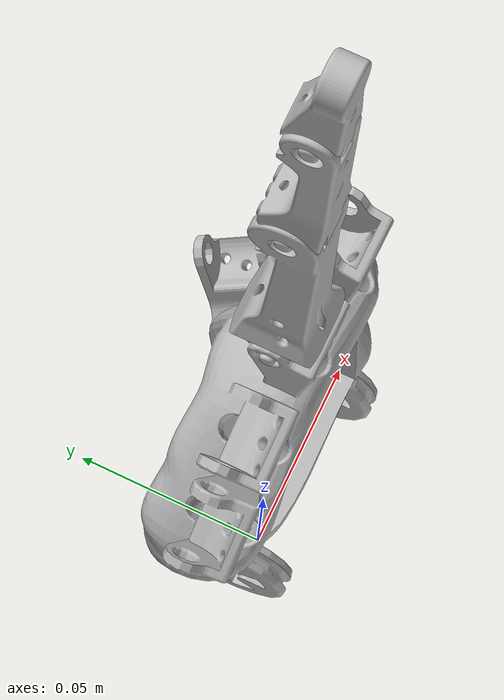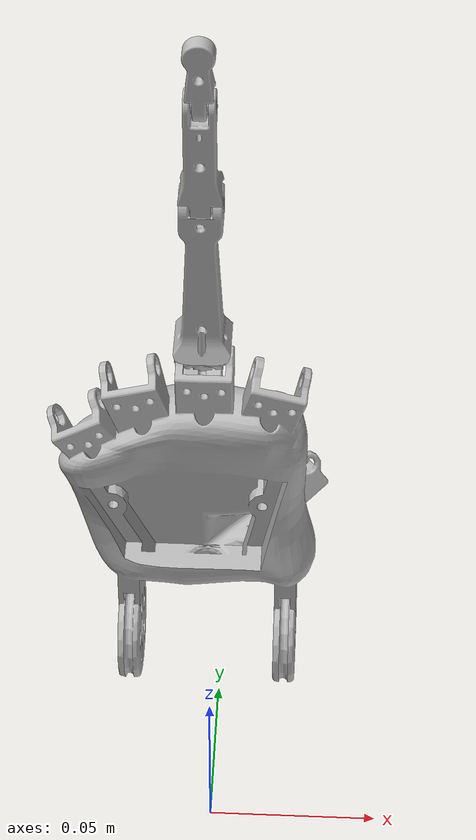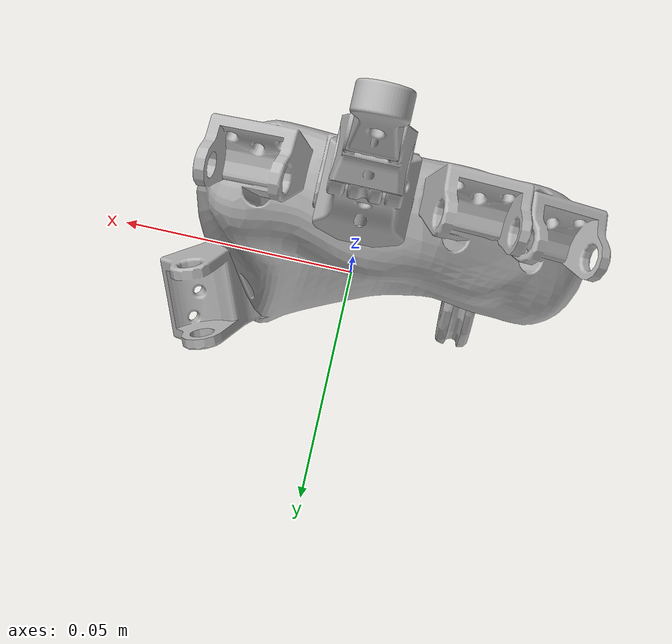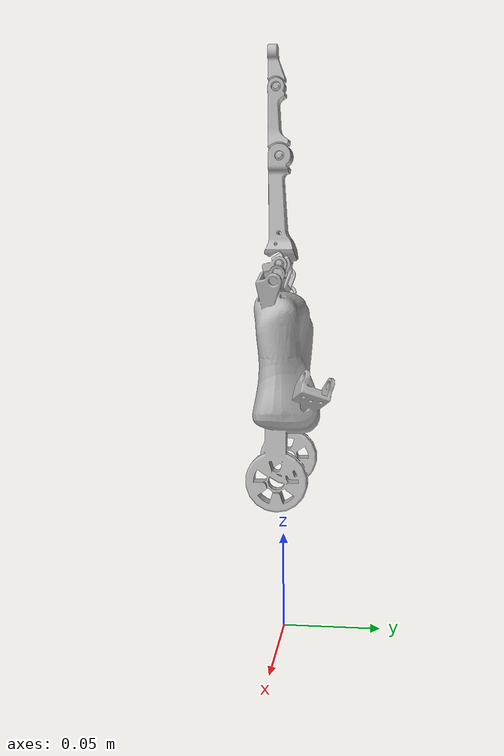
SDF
<?xml version="1.0" ?>
<sdf version="1.6">
	<model name="onefinger">
		<link name="palm">
			<self_collide>false</self_collide>
			<pose frame="">-6.664340119189506e-05 6.162819843918025e-05 0.0056437840567346974 0.0 -0.0 0.0</pose>
			<inertial>
				<pose frame="">0.0 0.0 0.0 0 0 0</pose>
				<mass>15.519964907903075</mass>
				<inertia>
					<ixx>0.24262125582427416</ixx>
					<ixy>-1.7978814907597018e-07</ixy>
					<ixz>-1.758643879682634e-05</ixz>
					<iyy>0.2426383188330765</iyy>
					<iyz>1.7623163635523375e-05</iyz>
					<izz>0.4816929735544059</izz>
				</inertia>
			</inertial>
			<collision name="palm_collision">
				<geometry>
					<mesh>
						<uri>model://onefinger/meshes/CAD/palm.stl</uri>
						<scale>0.001 0.001 0.001</scale>
					</mesh>
				</geometry>
			</collision>
			<visual name="palm_visual">
				<geometry>
					<mesh>
						<uri>model://onefinger/meshes/CAD/palm.stl</uri>
						<scale>0.001 0.001 0.001</scale>
					</mesh>
				</geometry>
			</visual>
		</link>
		<link name="middle_limb0">
			<self_collide>false</self_collide>
			<pose frame="">-0.0005614072382198571 0.0001911940467719096 0.18754908808523774 0.0 -0.0 0.0</pose>
			<inertial>
				<pose frame="">0.0 0.0 0.0 0 0 0</pose>
				<mass>0.0004269894659846259</mass>
				<inertia>
					<ixx>1.5024418590495028e-05</ixx>
					<ixy>4.467576260292382e-11</ixy>
					<ixz>-1.4967576697614157e-08</ixz>
					<iyy>1.5027288983317431e-05</iyy>
					<iyz>4.4958256796038474e-08</iyz>
					<izz>7.584567912129686e-09</izz>
				</inertia>
			</inertial>
			<collision name="middle_limb0_collision">
				<geometry>
					<mesh>
						<uri>model://onefinger/meshes/CAD/middle_limb0.stl</uri>
						<scale>0.001 0.001 0.001</scale>
					</mesh>
				</geometry>
			</collision>
			<visual name="middle_limb0_visual">
				<geometry>
					<mesh>
						<uri>model://onefinger/meshes/CAD/middle_limb0.stl</uri>
						<scale>0.001 0.001 0.001</scale>
					</mesh>
				</geometry>
			</visual>
		</link>
		<link name="middle_limb1">
			<self_collide>false</self_collide>
			<pose frame="">-0.0005622466361193446 -0.0007034251535573103 0.21222052674075353 0.0 -0.0 0.0</pose>
			<inertial>
				<pose frame="">0.0 0.0 0.0 0 0 0</pose>
				<mass>0.003829477216665521</mass>
				<inertia>
					<ixx>0.0001734470724372432</ixx>
					<ixy>-1.5140545386005193e-09</ixy>
					<ixz>6.054526341483969e-07</ixz>
					<iyy>0.00017344679488345691</iyy>
					<iyz>4.5693231951306453e-07</iyz>
					<izz>7.755117774694315e-08</izz>
				</inertia>
			</inertial>
			<collision name="middle_limb1_collision">
				<geometry>
					<mesh>
						<uri>model://onefinger/meshes/CAD/middle_limb1.stl</uri>
						<scale>0.001 0.001 0.001</scale>
					</mesh>
				</geometry>
			</collision>
			<visual name="middle_limb1_visual">
				<geometry>
					<mesh>
						<uri>model://onefinger/meshes/CAD/middle_limb1.stl</uri>
						<scale>0.001 0.001 0.001</scale>
					</mesh>
				</geometry>
			</visual>
		</link>
		<link name="middle_limb2">
			<self_collide>false</self_collide>
			<pose frame="">-0.0005620708223228621 -0.0014746610724396692 0.2519666528877768 0.0 -0.0 0.0</pose>
			<inertial>
				<pose frame="">0.0 0.0 0.0 0 0 0</pose>
				<mass>0.00162479160090613</mass>
				<inertia>
					<ixx>0.00010333221313319288</ixx>
					<ixy>-1.3470348047916095e-09</ixy>
					<ixz>6.164227970563374e-07</ixz>
					<iyy>0.00010332834567878387</iyy>
					<iyz>2.3011160178749415e-07</iyz>
					<izz>2.395750385176394e-08</izz>
				</inertia>
			</inertial>
			<collision name="middle_limb2_collision">
				<geometry>
					<mesh>
						<uri>model://onefinger/meshes/CAD/middle_limb2.stl</uri>
						<scale>0.001 0.001 0.001</scale>
					</mesh>
				</geometry>
			</collision>
			<visual name="middle_limb2_visual">
				<geometry>
					<mesh>
						<uri>model://onefinger/meshes/CAD/middle_limb2.stl</uri>
						<scale>0.001 0.001 0.001</scale>
					</mesh>
				</geometry>
			</visual>
		</link>
		<link name="middle_limb3">
			<self_collide>false</self_collide>
			<pose frame="">-0.0005621880690376905 -0.0022096259752100132 0.2790957138228765 0.0 -0.0 0.0</pose>
			<inertial>
				<pose frame="">0.0 0.0 0.0 0 0 0</pose>
				<mass>0.0006943749017269073</mass>
				<inertia>
					<ixx>5.4121019021675476e-05</ixx>
					<ixy>-8.626164948284511e-10</ixy>
					<ixz>4.310030631920739e-07</ixz>
					<iyy>5.411747094805615e-05</iyy>
					<iyz>1.0895061373856633e-07</iyz>
					<izz>8.446893842176285e-09</izz>
				</inertia>
			</inertial>
			<collision name="middle_limb3_collision">
				<geometry>
					<mesh>
						<uri>model://onefinger/meshes/CAD/middle_limb3.stl</uri>
						<scale>0.001 0.001 0.001</scale>
					</mesh>
				</geometry>
			</collision>
			<visual name="middle_limb3_visual">
				<geometry>
					<mesh>
						<uri>model://onefinger/meshes/CAD/middle_limb3.stl</uri>
						<scale>0.001 0.001 0.001</scale>
					</mesh>
				</geometry>
			</visual>
		</link>
		<joint name="palm_middle" type="revolute">
			<parent>palm</parent>
			<child>middle_limb0</child>
			<pose frame="">-0.0050008078530508 -0.00013610652552688654 0.0007064719165269651 0 0 0</pose>
			<axis>
				<xyz>1.0000000000000084 -8.443806675403127e-16 -4.3021142204226157e-16</xyz>
				<limit>
					<lower>-1.2217304763960306</lower>
					<upper>0.3490658503988659</upper>
				</limit>
				<use_parent_model_frame>0</use_parent_model_frame>
			</axis>
		</joint>
		<joint name="joint0_middle" type="revolute">
			<parent>middle_limb0</parent>
			<child>middle_limb1</child>
			<pose frame="">3.154484868962693e-08 -0.0018395635365509734 -0.025464966738988366 0 0 0</pose>
			<axis>
				<xyz>-9.577715762102746e-16 -0.8660254037844394 -0.5000000000000004</xyz>
				<limit>
					<lower>-0.6108652381980153</lower>
					<upper>0.6108652381980153</upper>
				</limit>
				<use_parent_model_frame>0</use_parent_model_frame>
			</axis>
		</joint>
		<joint name="joint1_middle" type="revolute">
			<parent>middle_limb1</parent>
			<child>middle_limb2</child>
			<pose frame="">0.005499855731052255 0.0015967358917924335 -0.012586092886011785 0 0 0</pose>
			<axis>
				<xyz>-0.9999999999999953 9.399690255184255e-16 9.02056207507943e-16</xyz>
				<limit>
					<lower>0.0</lower>
					<upper>1.9198621771937625</upper>
				</limit>
				<use_parent_model_frame>0</use_parent_model_frame>
			</axis>
		</joint>
		<joint name="joint2_middle" type="revolute">
			<parent>middle_limb2</parent>
			<child>middle_limb3</child>
			<pose frame="">0.003999972977767122 0.0008317007945627442 -0.007965403821111465 0 0 0</pose>
			<axis>
				<xyz>-0.9999999999999958 9.39969025518426e-16 8.743006318923143e-16</xyz>
				<limit>
					<lower>0.0</lower>
					<upper>1.2217304763960306</upper>
				</limit>
				<use_parent_model_frame>0</use_parent_model_frame>
			</axis>
		</joint>
		<plugin filename="libmusc_plugin.so" name="musc_plugin">
			<myoMuscle name="motor10">
				<link name="palm">
					<viaPoint type="FIXPOINT">6.664340119163325e-05 -6.162819843951332e-05 0.10535621594326589</viaPoint>
					<viaPoint type="FIXPOINT">-0.0018091419444456267 -0.003314563808937298 0.1619720379927335</viaPoint>
					<viaPoint type="FIXPOINT">6.664340119162355e-05 -0.007231491000575027 0.17466849499714737</viaPoint>
				</link>
				<link name="middle_limb1">
					<viaPoint type="FIXPOINT">6.224663611888441e-05 0.006524399982261683 -0.022277163911692634</viaPoint>
					<viaPoint type="FIXPOINT">-0.0008036110435548371 0.005368917013418274 -0.012178862540556744</viaPoint>
					<viaPoint type="FIXPOINT">6.224663611892251e-05 0.0022404785100462884 0.016899878059315476</viaPoint>
				</link>
				<link name="middle_limb3">
					<viaPoint type="FIXPOINT">6.218806903731556e-05 0.004053221450473094 -0.005661658077470975</viaPoint>
					<viaPoint type="FIXPOINT">6.218806903731438e-05 0.0026774511920078427 0.000854708927124861</viaPoint>
				</link>
			</myoMuscle>
			<myoMuscle name="motor11">
				<link name="palm">
					<viaPoint type="FIXPOINT">6.664340119163325e-05 -6.162819843951332e-05 0.10535621594326589</viaPoint>
					<viaPoint type="FIXPOINT">-0.0018091419444456267 -0.003314563808937298 0.1619720379927335</viaPoint>
					<viaPoint type="FIXPOINT">6.664340119162355e-05 -0.007231491000575027 0.17466849499714737</viaPoint>
				</link>
				<link name="middle_limb1">
					<viaPoint type="FIXPOINT">6.224663611888441e-05 0.006524399982261683 -0.022277163911692634</viaPoint>
					<viaPoint type="FIXPOINT">-0.0008036110435548371 0.005368917013418274 -0.012178862540556744</viaPoint>
					<viaPoint type="FIXPOINT">6.224663611892251e-05 0.0022404785100462884 0.016899878059315476</viaPoint>
					<viaPoint type="FIXPOINT">6.224663611892883e-05 -0.004229587548335502 0.024169473259247773</viaPoint>
				</link>
				<link name="middle_limb2">
					<viaPoint type="FIXPOINT">6.207082232246607e-05 -0.0034583516294531638 0.0032982221122244935</viaPoint>
				</link>
			</myoMuscle>
			<myoMuscle name="motor12">
				<link name="palm">
					<viaPoint type="FIXPOINT">6.664340119163325e-05 -6.162819843951332e-05 0.10535621594326589</viaPoint>
					<viaPoint type="FIXPOINT">-0.002224644446286377 0.0007041756590267907 0.1619720379927335</viaPoint>
					<viaPoint type="FIXPOINT">0.002567692004391111 0.0017041756590267826 0.16892572603741776</viaPoint>
				</link>
				<link name="middle_limb1">
					<viaPoint type="FIXPOINT">0.001055621208620051 -0.005344509081165966 -0.02027391635700834</viaPoint>
					<viaPoint type="FIXPOINT">0.0010312452653581602 -0.0054766536458324775 -0.015155404443527623</viaPoint>
					<viaPoint type="FIXPOINT">6.224663611889523e-05 -0.004229587548335466 -0.009205526740752283</viaPoint>
				</link>
			</myoMuscle>
			<myoMuscle name="motor13">
				<link name="palm">
					<viaPoint type="FIXPOINT">6.664340119163325e-05 -6.162819843951332e-05 0.10535621594326591</viaPoint>
					<viaPoint type="FIXPOINT">0.0025657233509518208 -0.005061628198439721 0.1619720379927335</viaPoint>
					<viaPoint type="FIXPOINT">-0.004433356598808351 -0.007312474053151083 0.1770223501994788</viaPoint>
				</link>
				<link name="middle_limb1">
					<viaPoint type="FIXPOINT">6.224663611894284e-05 -0.000490476975653907 -0.017716623226162617</viaPoint>
					<viaPoint type="FIXPOINT">0.0055207059887732645 -0.0005078215438521911 -0.0146162110013589</viaPoint>
					<viaPoint type="FIXPOINT">0.004672086580545279 0.0002704124516645422 -0.010205526740752298</viaPoint>
				</link>
			</myoMuscle>
			<myoMuscle name="motor14">
				<link name="palm">
					<viaPoint type="FIXPOINT">6.664340119163325e-05 -6.162819843951332e-05 0.10535621594326589</viaPoint>
					<viaPoint type="FIXPOINT">0.0025657233509518208 -0.005061628198439721 0.1619720379927335</viaPoint>
					<viaPoint type="FIXPOINT">0.004566643401191683 -0.007312474053151089 0.17702235019947873</viaPoint>
				</link>
				<link name="middle_limb1">
					<viaPoint type="FIXPOINT">6.224663611894284e-05 -0.000490476975653907 -0.017716623226162617</viaPoint>
					<viaPoint type="FIXPOINT">-0.00539621271653548 -0.000507821543852179 -0.014616211001358863</viaPoint>
					<viaPoint type="FIXPOINT">-0.004547593308307487 0.00027041245166455107 -0.010205526740752263</viaPoint>
				</link>
			</myoMuscle>
		</plugin>
	</model>
</sdf>
